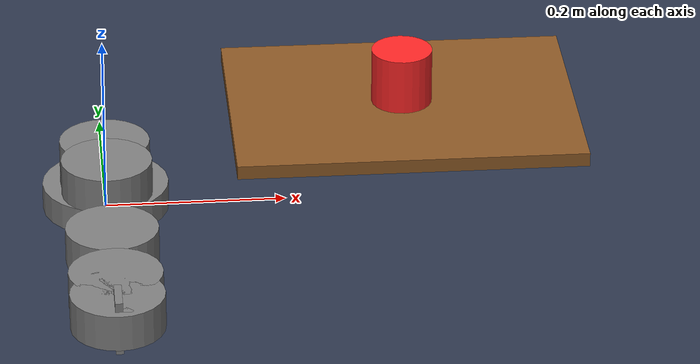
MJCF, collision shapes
<mujoco model="UPOOSTUDIO_1.5KG">
  <compiler angle="radian" autolimits="true"
             meshdir="../meshes"/>

  <option timestep="0.002" gravity="0 0 -9.81" integrator="implicitfast"/>

  <default>
    <joint limited="true" damping="3.0" armature="0.01"/>
    <geom contype="1" conaffinity="1" condim="6"
          solref="0.02 1" solimp="0.9 0.95 0.001"
          friction="1.5 0.3 0.05"/>
    <default class="visual">
      <geom contype="0" conaffinity="0" group="2"/>
    </default>
    <default class="collision">
      <geom group="3"/>
    </default>
    <default class="gripper">
      <geom condim="6" solref="0.02 1" friction="2.0 0.5 0.05"/>
    </default>
  </default>

  <asset>
    <texture name="grid_tex" type="2d" builtin="checker" width="256" height="256"
             rgb1="0.15 0.18 0.25" rgb2="0.2 0.25 0.35"/>
    <material name="grid_mat" texture="grid_tex" texrepeat="6 6" reflectance="0.05"/>
    <mesh name="mesh_base_link" file="base_link.STL"/>
    <mesh name="mesh_Link_01" file="Link_01.STL"/>
    <mesh name="mesh_Link_02" file="Link_02.STL"/>
    <mesh name="mesh_Link_03" file="Link_03.STL"/>
    <mesh name="mesh_Link_04" file="Link_04.STL"/>
    <mesh name="mesh_Link_05" file="Link_05.STL"/>
    <mesh name="mesh_Link_06" file="Link_06.STL"/>
  </asset>

  <worldbody>
    <light name="sun" directional="true" diffuse="0.7 0.7 0.7" specular="0.3 0.3 0.3"
           pos="2 1 3" dir="-1 -0.3 -1"/>

    <geom name="floor" type="plane" size="0 0 0.05" pos="0 0 0"
          material="grid_mat"/>

    <!-- Table + cup -->
    <body name="table" pos="0.35 0.2 0">
      <geom name="table_top" type="box" size="0.2 0.15 0.015" rgba="0.55 0.35 0.15 1" class="collision"/>
    </body>
    <body name="cup" pos="0.35 0.2 0.035">
      <freejoint/>
      <geom name="cup_body" type="cylinder" size="0.035 0.045" mass="0.25" rgba="1 0.15 0.15 1" class="collision"/>
    </body>
    <!-- Base link (static, fixed to world) -->
    <body name="base_link" pos="0 0 0.02">
      <geom name="base_link_vis" type="mesh" mesh="mesh_base_link" rgba="0.5 0.5 0.6 1" class="visual"/>
      <geom name="base_link_col" type="cylinder" size="0.07 0.015" pos="0 0 -0.005" class="collision"/>
      <body name="Link_01" pos="0 0 0">
        <joint name="Base _J01" type="hinge" axis="0 0 -1" range="-2.82 2.82"/>
        <inertial pos="4.2174462242905E-09 -0.00124404976816361 0.0230550386350709" mass="0.350707875933926"
                  fullinertia="0.000285887501504946 0.00049547075448618 0.00043828076124294 -8.6518040332638e-12 1.23917923863354e-11 -3.67341248547145e-08"/>
        <geom name="Link_01_vis" type="mesh" mesh="mesh_Link_01" rgba="0.5 0.5 0.6 1" class="visual"/>
        <geom name="Link_01_col" type="cylinder" size="0.05 0.02" class="collision"/>
        <body name="Link_02" pos="0 0 0.04176">
          <joint name="J02" type="hinge" axis="1 0 0" range="-3.14 0.0"/>
          <inertial pos="-0.00103462201382662 -0.0109555943636958 0.00774514707587276" mass="0.671672918277462"
                    fullinertia="0.000319526435119736 0.000369914008934196 0.000408711270920345 5.80848836326841e-07 -3.11240654656752e-07 -2.9894610957103e-06"/>
          <geom name="Link_02_vis" type="mesh" mesh="mesh_Link_02" rgba="0.5 0.5 0.6 1" class="visual"/>
          <geom name="Link_02_col" type="cylinder" size="0.05 0.02" class="collision"/>
          <body name="Link_03" pos="0 -0.0602500000000012 0.00774017811225591">
            <joint name="J03" type="hinge" axis="0 1 0" range="-1.57 1.57"/>
            <inertial pos="-0.00315895678249157 -0.106389300507964 0.00144826569905046" mass="0.759858794947217"
                      fullinertia="0.00100247842457942 0.000417465728171374 0.000893492208680512 -5.63486072995805e-05 5.76324624226224e-07 7.34756237322534e-06"/>
            <geom name="Link_03_vis" type="mesh" mesh="mesh_Link_03" rgba="0.5 0.5 0.6 1" class="visual"/>
            <geom name="Link_03_col" type="cylinder" size="0.05 0.02" class="collision"/>
            <body name="Link_04" pos="0 -0.1535 0">
              <joint name="J04" type="hinge" axis="0 0 1" range="-0.78 2.6"/>
              <inertial pos="-0.00223565864264426 -0.0572282137342686 0.000925691786811567" mass="0.549723593796039"
                        fullinertia="0.000427799242918439 0.000210127404375671 0.000415998228489893 -1.64055662013839e-06 -5.15248062685778e-06 -2.35749317367427e-06"/>
              <geom name="Link_04_vis" type="mesh" mesh="mesh_Link_04" rgba="0.5 0.5 0.6 1" class="visual"/>
              <geom name="Link_04_col" type="cylinder" size="0.05 0.02" class="collision"/>
              <body name="Link_05" pos="0 -0.0955000000000005 0">
                <joint name="J05" type="hinge" axis="0 -1 0" range="-1.57 1.57"/>
                <inertial pos="4.09809370484208E-05 -0.0408892406153549 4.19968123942793E-05" mass="0.476031589866558"
                          fullinertia="0.00022535643752685 0.000162962828146822 0.000175806107144355 6.32758794212867e-07 7.21527286035776e-08 -9.86184908876216e-07"/>
                <geom name="Link_05_vis" type="mesh" mesh="mesh_Link_05" rgba="0.5 0.5 0.6 1" class="visual"/>
                <geom name="Link_05_col" type="cylinder" size="0.05 0.02" class="collision"/>
                <body name="Link_06" pos="0 -0.045500000000001 0">
                  <joint name="J06" type="hinge" axis="1 0 0" range="-1.57 1.57"/>
                  <inertial pos="-0.000198476404232499 -0.0714020393027362 5.1721044300318E-05" mass="0.773066581164664"
                            fullinertia="0.000355393592677326 0.000528217462667785 0.000620542630219826 5.19342207090488e-07 1.73311457392444e-07 -7.76893779256658e-07"/>
                  <geom name="Link_06_vis" type="mesh" mesh="mesh_Link_06" rgba="0.5 0.5 0.6 1" class="visual"/>
                  <geom name="Link_06_col" type="cylinder" size="0.05 0.02" class="collision"/>
                  <body name="gripper_mount" pos="0 -0.025 0">
                    <geom name="gripper_mount_col" type="box" size="0.015 0.015 0.02" class="gripper" mass="0.1"/>
                    <body name="finger_left" pos="0 0.005 0.018">
                      <joint name="upoo_finger_left" type="slide" axis="0 0 -1" range="0 0.025"/>
                      <geom name="finger_left_col" type="box" size="0.004 0.02 0.012" class="gripper"/>
                    </body>
                    <body name="finger_right" pos="0 0.005 -0.018">
                      <joint name="upoo_finger_right" type="slide" axis="0 0 1" range="0 0.025"/>
                      <geom name="finger_right_col" type="box" size="0.004 0.02 0.012" class="gripper"/>
                    </body>
                  </body>
                </body>
              </body>
            </body>
          </body>
        </body>
      </body>
    </body>
  </worldbody>

  <actuator>
    <position name="Base _J01_act" joint="Base _J01" kp="200" kv="30" ctrllimited="true" ctrlrange="-2.82 2.82"/>
    <position name="J02_act" joint="J02" kp="300" kv="30" ctrllimited="true" ctrlrange="-3.14 0.0"/>
    <position name="J03_act" joint="J03" kp="150" kv="30" ctrllimited="true" ctrlrange="-1.57 1.57"/>
    <position name="J04_act" joint="J04" kp="100" kv="30" ctrllimited="true" ctrlrange="-0.78 2.6"/>
    <position name="J05_act" joint="J05" kp="100" kv="30" ctrllimited="true" ctrlrange="-1.57 1.57"/>
    <position name="J06_act" joint="J06" kp="80" kv="30" ctrllimited="true" ctrlrange="-1.57 1.57"/>
    <position name="finger_left_ctrl"  joint="upoo_finger_left"  kp="100" kv="10" ctrllimited="true" ctrlrange="0 0.025" forcerange="-15 15"/>
    <position name="finger_right_ctrl" joint="upoo_finger_right" kp="100" kv="10" ctrllimited="true" ctrlrange="0 0.025" forcerange="-15 15"/>
  </actuator>

  <keyframe>
    <key name="home"
         qpos="0.35 0.2 0.035 1 0 0 0  0 -1.0 -0.6 0.5 -0.3 0  0.025 0.025"/>
  </keyframe>
</mujoco>
